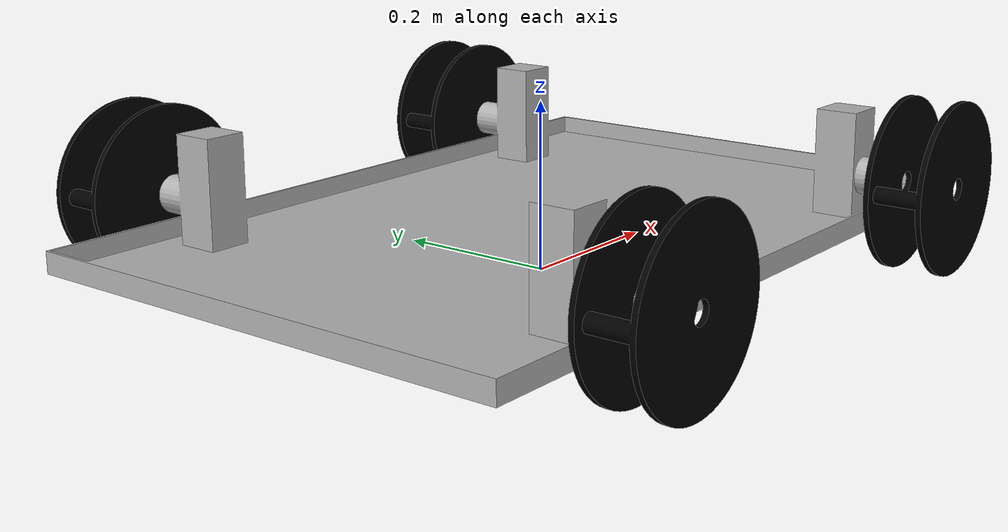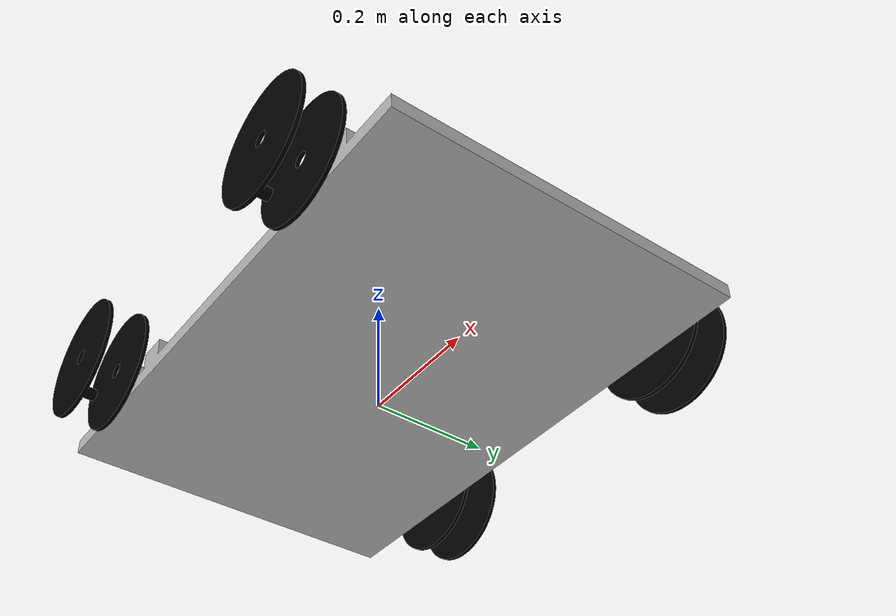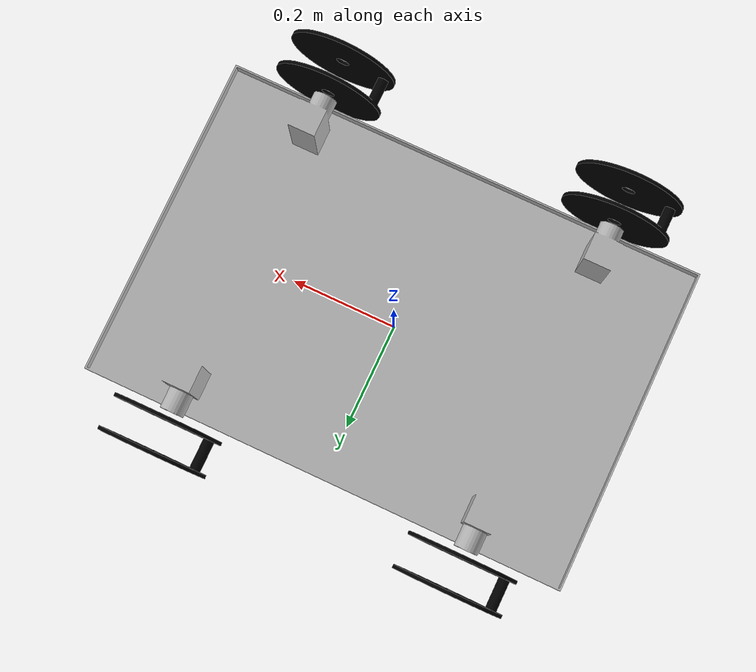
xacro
<?xml version="1.0"?>
<robot xmlns:xacro="http://www.ros.org/wiki/xacro" name="cad_urdf">

    <!-- Mesh file path variables -->
    <xacro:property name="base_file_path" value="package://robot_sim_description/meshes/" />
    <xacro:property name="mesh_base_link"           value="${base_file_path}base_link.stl" />
    <xacro:property name="mesh_front_left_wheel"    value="${base_file_path}wheel_front_left.stl" />
    <xacro:property name="mesh_front_right_wheel"   value="${base_file_path}wheel_front_right.stl" />
    <xacro:property name="mesh_rear_left_wheel"     value="${base_file_path}wheel_rear_left.stl" />
    <xacro:property name="mesh_rear_right_wheel"    value="${base_file_path}wheel_rear_right.stl" />
    <!-- Mesh scale -->
    <xacro:property name="mesh_scale"               value="0.001 0.001 0.001" />

    <xacro:property name="chassis_mass" value="5.0" />
    <xacro:property name="wheel_mass" value="0.5" />
    <xacro:property name="wheel_radius" value="0.102" />
    <xacro:property name="wheel_thickness" value="0.069" />

    <xacro:property name="chassis_length"   value="0.4096"/>   <!-- 2 ft -->
    <xacro:property name="chassis_width"    value="0.9144"/>   <!-- 2 ft -->
    <xacro:property name="chassis_height"   value="0.0762"/>   <!-- 6 in -->

    <xacro:property name="wheel_offset_x" value="0.2794"/>
    <xacro:property name="wheel_offset_y" value="0.2708"/>
    <xacro:property name="wheel_offset_z" value="0.0516"/>
    <xacro:property name="mesh_rpy"       value="0 0 -1.57079"/>

    <xacro:property name="wheel_ixx" value="${(wheel_mass/12.0) * (3*wheel_radius*wheel_radius + wheel_thickness*wheel_thickness)}"/>
    <xacro:property name="wheel_iyy" value="${(wheel_mass/2.0)  * (wheel_radius*wheel_radius)}"/>
    <xacro:property name="wheel_izz" value="${wheel_ixx}"/>

    <xacro:property name="chassis_ixx" value="${(chassis_mass / 12.0) * (chassis_height*chassis_height + chassis_width*chassis_width)}"/>
    <xacro:property name="chassis_iyy" value="${(chassis_mass / 12.0) * (chassis_length*chassis_length + chassis_height*chassis_height)}"/>
    <xacro:property name="chassis_izz" value="${(chassis_mass / 12.0) * (chassis_length*chassis_length + chassis_width*chassis_width)}"/>

    <xacro:property name="wheel_com_x_abs" value="0.08445"/>
    <xacro:property name="wheel_com_y"     value="-0.003338577608035853"/>
    <xacro:property name="wheel_com_z"     value="0.0"/>

    <material name="black">
        <color rgba="0.0 0.0 0.0 1.0" />
    </material>

    <material name="silver">
        <color rgba="0.700 0.700 0.700 1.000"/>
    </material>

    <link name="base_footprint" />

    <!-- Flipper Macro with Fixed Joint -->

    <!-- Wheel Macro with Continuous Joint -->
    <xacro:macro name="wheel_macro" params="name mesh_file origin_xyz origin_rpy inertial_x_mult joint_origin_xyz joint_origin_rpy joint_axis">
        <link name="${name}">
            <inertial>
                <origin xyz="${wheel_com_x_abs * inertial_x_mult} ${wheel_com_y} ${wheel_com_z}" rpy="0 0 0"/>
                <mass value="${wheel_mass}"/>
                <inertia ixx="${wheel_ixx}" iyy="${wheel_iyy}" izz="${wheel_izz}" ixy="0" iyz="0" ixz="0"/> </inertial>
            <visual>
                <origin xyz="${origin_xyz}" rpy="${origin_rpy}"/>
                <geometry>
                    <mesh filename="${mesh_file}" scale="${mesh_scale}"/>
                </geometry>
                <material name="black"/>
            </visual>
            <collision>
                <origin xyz="0 0 0" rpy="1.57079 0 0"/>  <!-- Rotate 90° to align with wheel axis -->
                <geometry>
                    <cylinder radius="${wheel_radius}" length="${wheel_thickness}"/>
                </geometry>
            </collision>
        </link>

        <joint name="${name}_wheel_joint" type="continuous">
            <origin xyz="${joint_origin_xyz}" rpy="${joint_origin_rpy}"/>
            <parent link="base_link"/>
            <child link="${name}"/>
            <axis xyz="${joint_axis}"/>
        </joint>
    </xacro:macro>

    <!-- Base Link -->
    <link name="base_link">
        <inertial>
            <origin xyz="-2.1660968987257366e-16 -1.7328775189805893e-16 0.028711464160038225" rpy="0 0 0"/>
            <mass value="${chassis_mass}"/>
            <inertia ixx="${chassis_ixx}" iyy="${chassis_iyy}" izz="${chassis_izz}" ixy="0" iyz="0" ixz="0"/>
        </inertial>
        <visual>
            <origin xyz="0 0 0" rpy="${mesh_rpy}"/>
            <geometry>
                <mesh filename="${mesh_base_link}" scale="${mesh_scale}"/>
            </geometry>
            <material name="silver"/>
        </visual>
        <collision>
            <origin xyz="0 0 ${chassis_height / 2.0}" rpy="${mesh_rpy}"/>  <!-- Center at half height -->
            <geometry>
                <box size="${chassis_length} ${chassis_width} ${chassis_height}"/>
            </geometry>
        </collision>
    </link>

    <joint name="base_joint" type="fixed">
        <parent link="base_footprint" />
        <child link="base_link" />
        <origin xyz="0 0 0.0484" rpy="0 0 0"/>
    </joint>

    <!-- Wheels     -->
    <xacro:wheel_macro
        name="front_left"
        mesh_file="${mesh_front_left_wheel}"
        origin_xyz="-${wheel_offset_x} -${wheel_offset_y} -${wheel_offset_z}"
        origin_rpy="${mesh_rpy}"
        inertial_x_mult="-1"
        joint_origin_xyz="${wheel_offset_x} ${wheel_offset_y} ${wheel_offset_z}"
        joint_origin_rpy="0 0 0"
        joint_axis="0.0 1.0 0.0" />

    <xacro:wheel_macro
        name="front_right"
        mesh_file="${mesh_front_right_wheel}"
        origin_xyz="-${wheel_offset_x} ${wheel_offset_y} -${wheel_offset_z}"
        origin_rpy="${mesh_rpy}"
        inertial_x_mult="1"
        joint_origin_xyz="${wheel_offset_x} -${wheel_offset_y} ${wheel_offset_z}"
        joint_origin_rpy="0 0 0"
        joint_axis="0.0 1.0 0.0" />

    <xacro:wheel_macro
        name="rear_left"
        mesh_file="${mesh_rear_left_wheel}"
        origin_xyz="${wheel_offset_x} -${wheel_offset_y} -${wheel_offset_z}"
        origin_rpy="${mesh_rpy}"
        inertial_x_mult="-1"
        joint_origin_xyz="-${wheel_offset_x} ${wheel_offset_y} ${wheel_offset_z}"
        joint_origin_rpy="0 0 0"
        joint_axis="0.0 1.0 0.0" />

    <xacro:wheel_macro
        name="rear_right"
        mesh_file="${mesh_rear_right_wheel}"
        origin_xyz="${wheel_offset_x} ${wheel_offset_y} -${wheel_offset_z}"
        origin_rpy="${mesh_rpy}"
        inertial_x_mult="1"
        joint_origin_xyz="-${wheel_offset_x} -${wheel_offset_y} ${wheel_offset_z}"
        joint_origin_rpy="0 0 0"
        joint_axis="0.0 1.0 0.0" />

</robot>
        <!-- Flipper and Wheel Links using Macros -->
